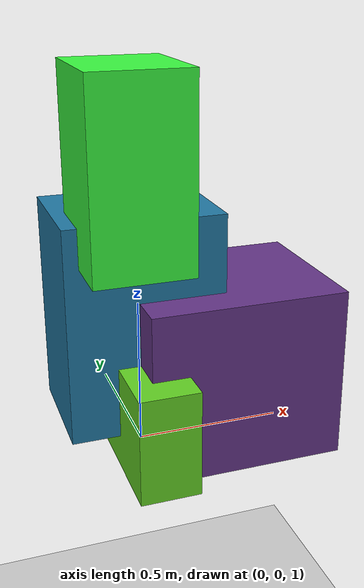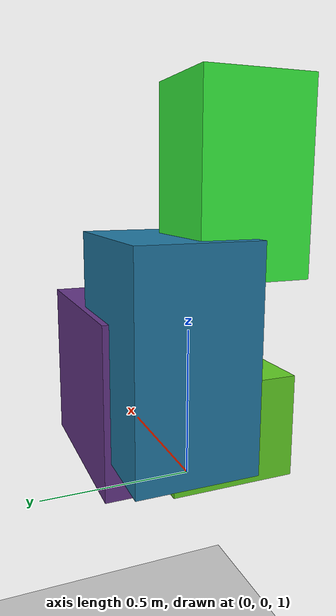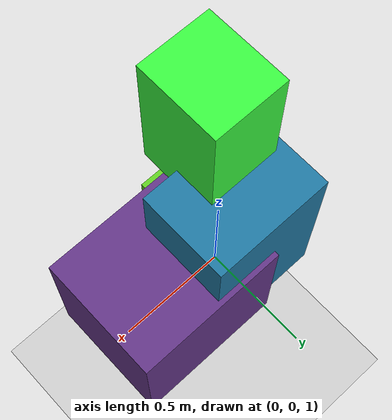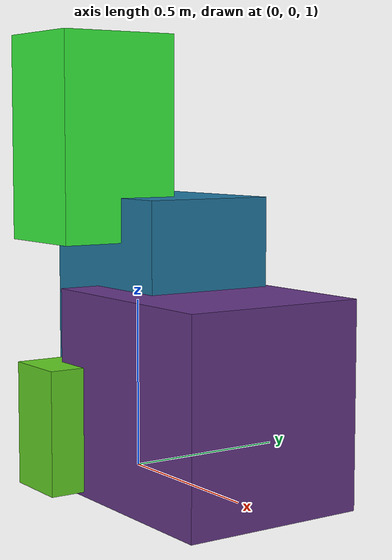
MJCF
<mujoco>
<worldbody>
<light diffuse=".5 .5 .5" pos="0 0 2" dir="0 -1 0"/>
<geom type="plane" size="20 20 0.1" rgba="0.8 0.8 0.8 1"/>
<body name = "base_new_new_new_new0" pos = "0.05588096026823014 -0.033261968569213644 1.026972721589077">
<geom type = "box" size = "0.04926943601255352 0.03376851213170162 0.12002593638346606" rgba = "0.3 0.3 0.3 1"/>
<joint name = "jbase_new_new_new_new" type = "free" axis = "0 1 0" pos = "0 0 -0.12002593638346606"/>
<body name = "limb_base_0_new_new_new_new0" pos = "-0.05790978217474455 -0.09562273360430937 0.12752743628909338">
<geom type = "box" size = "0.09924998455712356 0.21993695556898457 0.17931772572604482" rgba = "0.38644104266266965 0.8193153465813626 0.141726141182838 1"/>
<joint name = "jlimb_base_0_new_new_new_new" type = "hinge" axis = "0 0 1" pos = "0.027086678694108076 -0.19560912282762402 -0.07762214283870708"/>
<body name = "limb_limb_base_0_0_new_new_new_new0" pos = "0.3055550505088193 0.15520907284754443 0.1003874301759297">
<geom type = "box" size = "0.3302046288434152 0.2715981268890886 0.29321605954781826" rgba = "0.39147649402927287 0.2097390937876067 0.532206807242542 1"/>
<joint name = "jlimb_limb_base_0_0_new_new_new_new" type = "hinge" axis = "1 0 0" pos = "-0.29613908232751407 0.030035771251140944 -0.02195344257545962"/>
</body>
</body>
<body name = "limb_base_1_new_new_new_new0" pos = "-0.05484812233419206 0.11093521095678748 0.42517022904442103">
<geom type = "box" size = "0.2609287323415471 0.19851756929072836 0.35807255633882223" rgba = "0.1286278654289229 0.47413682189904105 0.6417214875229027 1"/>
<joint name = "jlimb_base_1_new_new_new_new" type = "hinge" axis = "0 1 0" pos = "0.04274086724655903 0.09393728393079723 -0.33875947105623955"/>
<body name = "limb_limb_base_1_0_new_new_new_new0" pos = "-0.05697368624094958 -0.1970975643991231 0.5288503427099852">
<geom type = "box" size = "0.15697782892275083 0.18119445137684353 0.29870178695357175" rgba = "0.2263631166680592 0.97638490618588 0.25253284047695923 1"/>
<joint name = "jlimb_limb_base_1_0_new_new_new_new" type = "hinge" axis = "1 0 0" pos = "-0.020312895215137957 0.06778792831073843 -0.25031190225626937"/>
</body>
</body>
</body>
</worldbody>
<actuator>
<motor name = "mbase_new_new_new_new" joint = "jbase_new_new_new_new" gear = "1" ctrllimited = "true" ctrlrange = "-1 1"/>
<motor name = "mlimb_base_0_new_new_new_new" joint = "jlimb_base_0_new_new_new_new" gear = "3" ctrllimited = "true" ctrlrange = "-3.0 3.0"/>
<motor name = "mlimb_limb_base_0_0_new_new_new_new" joint = "jlimb_limb_base_0_0_new_new_new_new" gear = "5" ctrllimited = "true" ctrlrange = "-5.0 5.0"/>
<motor name = "mlimb_base_1_new_new_new_new" joint = "jlimb_base_1_new_new_new_new" gear = "4" ctrllimited = "true" ctrlrange = "-4.0 4.0"/>
<motor name = "mlimb_limb_base_1_0_new_new_new_new" joint = "jlimb_limb_base_1_0_new_new_new_new" gear = "5" ctrllimited = "true" ctrlrange = "-5.0 5.0"/>
</actuator>
</mujoco>
